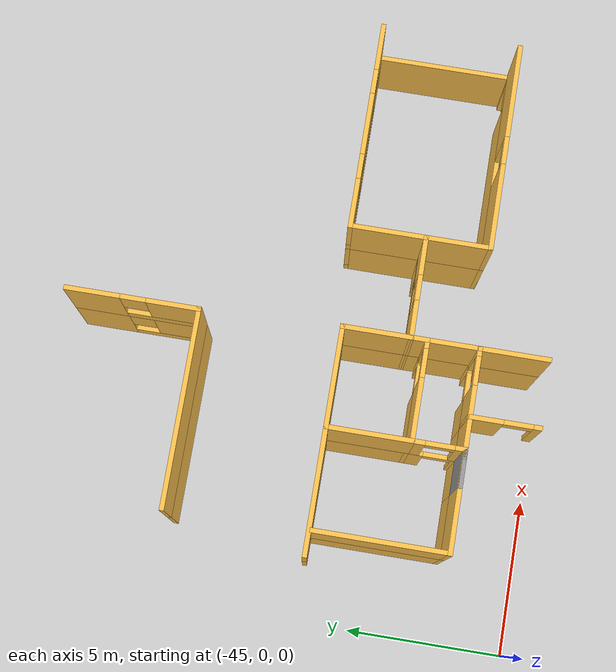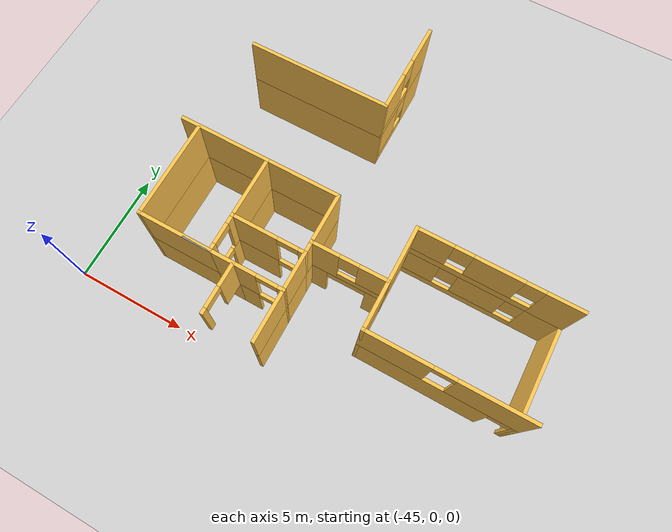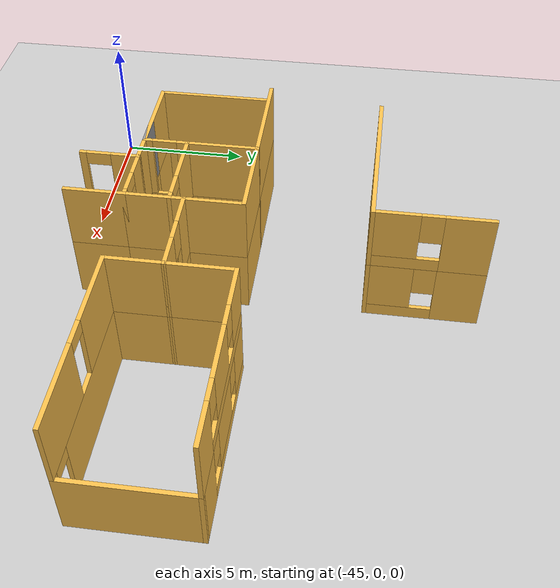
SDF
<sdf version="1.7">
 <world name="default">
  <model name="ground_plane">
   <static>1</static>
   <link name="link">
    <collision name="collision">
     <geometry><plane><normal>0 0 1</normal><size>100 100</size></plane></geometry>
     <surface>
      <contact><collide_bitmask>65535</collide_bitmask></contact>
      <friction><ode><mu>100</mu><mu2>50</mu2></ode></friction>
     </surface>
    </collision>
    <visual name="visual">
     <cast_shadows>0</cast_shadows>
     <geometry><plane><normal>0 0 1</normal><size>100 100</size></plane></geometry>
     <material>
      <script><uri>file://media/materials/scripts/gazebo.material</uri><name>Gazebo/Grey</name></script>
     </material>
    </visual>
   </link>
  </model>
  <model name="DepartmentBuilding">
   <pose>-25.6559 18.8293 0 0 -0 0</pose>
   <link name="Wall_106">
    <collision name="Wall_106_Collision">
     <geometry><box><size>4 0.15 2.5</size></box></geometry>
     <pose>0 0 1.25 0 -0 0</pose>
    </collision>
    <visual name="Wall_106_Visual">
     <pose>0 0 1.25 0 -0 0</pose>
     <geometry><box><size>4 0.15 2.5</size></box></geometry>
     <material>
      <script><uri>file://media/materials/scripts/gazebo.material</uri><name>Gazebo/Grey</name></script>
      <ambient>1 0.764706 0.305882 1</ambient>
     </material>
     <meta><layer>0</layer></meta>
    </visual>
    <pose>-15.5155 -12.1392 0 0 -0 0</pose>
   </link>
   <link name="Wall_108">
    <collision name="Wall_108_Collision">
     <geometry><box><size>2.75 0.15 2.5</size></box></geometry>
     <pose>0 0 1.25 0 -0 0</pose>
    </collision>
    <visual name="Wall_108_Visual">
     <pose>0 0 1.25 0 -0 0</pose>
     <geometry><box><size>2.75 0.15 2.5</size></box></geometry>
     <material>
      <script><uri>file://media/materials/scripts/gazebo.material</uri><name>Gazebo/Grey</name></script>
      <ambient>1 0.764706 0.305882 1</ambient>
     </material>
     <meta><layer>0</layer></meta>
    </visual>
    <pose>-13.5905 -13.4392 0 0 -0 -1.5708</pose>
   </link>
   <link name="Wall_109">
    <pose>-12.0405 -14.7392 0 0 -0 0</pose>
    <visual name="Wall_109_Visual_0">
     <pose>-0.642327 0 1.25 0 -0 0</pose>
     <geometry><box><size>1.96535 0.15 2.5</size></box></geometry>
     <material>
      <script><uri>file://media/materials/scripts/gazebo.material</uri><name>Gazebo/Grey</name></script>
      <ambient>1 0.764706 0.305882 1</ambient>
     </material>
     <meta><layer>0</layer></meta>
    </visual>
    <collision name="Wall_109_Collision_0">
     <geometry><box><size>1.96535 0.15 2.5</size></box></geometry>
     <pose>-0.642327 0 1.25 0 -0 0</pose>
    </collision>
    <visual name="Wall_109_Visual_1">
     <pose>1.43267 0 1.25 0 -0 0</pose>
     <geometry><box><size>0.384654 0.15 2.5</size></box></geometry>
     <material>
      <script><uri>file://media/materials/scripts/gazebo.material</uri><name>Gazebo/Grey</name></script>
      <ambient>1 0.764706 0.305882 1</ambient>
     </material>
     <meta><layer>0</layer></meta>
    </visual>
    <collision name="Wall_109_Collision_1">
     <geometry><box><size>0.384654 0.15 2.5</size></box></geometry>
     <pose>1.43267 0 1.25 0 -0 0</pose>
    </collision>
    <visual name="Wall_109_Visual_2">
     <pose>0.790346 0 2.25 0 -0 0</pose>
     <geometry><box><size>0.9 0.15 0.5</size></box></geometry>
     <material>
      <script><uri>file://media/materials/scripts/gazebo.material</uri><name>Gazebo/Grey</name></script>
      <ambient>1 0.764706 0.305882 1</ambient>
     </material>
     <meta><layer>0</layer></meta>
    </visual>
    <collision name="Wall_109_Collision_2">
     <geometry><box><size>0.9 0.15 0.5</size></box></geometry>
     <pose>0.790346 0 2.25 0 -0 0</pose>
    </collision>
   </link>
   <link name="Wall_111">
    <collision name="Wall_111_Collision">
     <geometry><box><size>3.25 0.15 2.5</size></box></geometry>
     <pose>0 0 1.25 0 -0 0</pose>
    </collision>
    <visual name="Wall_111_Visual">
     <pose>0 0 1.25 0 -0 0</pose>
     <geometry><box><size>3.25 0.15 2.5</size></box></geometry>
     <material>
      <script><uri>file://media/materials/scripts/gazebo.material</uri><name>Gazebo/Grey</name></script>
      <ambient>1 0.764706 0.305882 1</ambient>
     </material>
     <meta><layer>0</layer></meta>
    </visual>
    <pose>-12.0405 -12.1392 0 0 -0 -3.14159</pose>
   </link>
   <link name="Wall_113">
    <pose>-13.5905 -15.5392 0 0 -0 -1.5708</pose>
    <visual name="Wall_113_Visual_0">
     <pose>-0.577463 0 1.25 0 -0 0</pose>
     <geometry><box><size>0.595074 0.15 2.5</size></box></geometry>
     <material>
      <script><uri>file://media/materials/scripts/gazebo.material</uri><name>Gazebo/Grey</name></script>
      <ambient>1 0.764706 0.305882 1</ambient>
     </material>
     <meta><layer>0</layer></meta>
    </visual>
    <collision name="Wall_113_Collision_0">
     <geometry><box><size>0.595074 0.15 2.5</size></box></geometry>
     <pose>-0.577463 0 1.25 0 -0 0</pose>
    </collision>
    <visual name="Wall_113_Visual_1">
     <pose>0.747537 0 1.25 0 -0 0</pose>
     <geometry><box><size>0.254926 0.15 2.5</size></box></geometry>
     <material>
      <script><uri>file://media/materials/scripts/gazebo.material</uri><name>Gazebo/Grey</name></script>
      <ambient>1 0.764706 0.305882 1</ambient>
     </material>
     <meta><layer>0</layer></meta>
    </visual>
    <collision name="Wall_113_Collision_1">
     <geometry><box><size>0.254926 0.15 2.5</size></box></geometry>
     <pose>0.747537 0 1.25 0 -0 0</pose>
    </collision>
    <visual name="Wall_113_Visual_2">
     <pose>0.170074 0 2.25 0 -0 0</pose>
     <geometry><box><size>0.9 0.15 0.5</size></box></geometry>
     <material>
      <script><uri>file://media/materials/scripts/gazebo.material</uri><name>Gazebo/Grey</name></script>
      <ambient>1 0.764706 0.305882 1</ambient>
     </material>
     <meta><layer>0</layer></meta>
    </visual>
    <collision name="Wall_113_Collision_2">
     <geometry><box><size>0.9 0.15 0.5</size></box></geometry>
     <pose>0.170074 0 2.25 0 -0 0</pose>
    </collision>
   </link>
   <link name="Wall_114">
    <collision name="Wall_114_Collision">
     <geometry><box><size>3.25 0.15 2.5</size></box></geometry>
     <pose>0 0 1.25 0 -0 0</pose>
    </collision>
    <visual name="Wall_114_Visual">
     <pose>0 0 1.25 0 -0 0</pose>
     <geometry><box><size>3.25 0.15 2.5</size></box></geometry>
     <material>
      <script><uri>file://media/materials/scripts/gazebo.material</uri><name>Gazebo/Grey</name></script>
      <ambient>1 0.764706 0.305882 1</ambient>
     </material>
     <meta><layer>0</layer></meta>
    </visual>
    <pose>-15.1405 -16.3392 0 0 -0 3.14159</pose>
   </link>
   <link name="Wall_115">
    <collision name="Wall_115_Collision">
     <geometry><box><size>4.25 0.15 2.5</size></box></geometry>
     <pose>0 0 1.25 0 -0 0</pose>
    </collision>
    <visual name="Wall_115_Visual">
     <pose>0 0 1.25 0 -0 0</pose>
     <geometry><box><size>4.25 0.15 2.5</size></box></geometry>
     <material>
      <script><uri>file://media/materials/scripts/gazebo.material</uri><name>Gazebo/Grey</name></script>
      <ambient>1 0.764706 0.305882 1</ambient>
     </material>
     <meta><layer>0</layer></meta>
    </visual>
    <pose>-16.6905 -14.2892 0 0 -0 1.5708</pose>
   </link>
   <link name="Wall_117">
    <collision name="Wall_117_Collision">
     <geometry><box><size>1.25 0.15 2.5</size></box></geometry>
     <pose>0 0 1.25 0 -0 0</pose>
    </collision>
    <visual name="Wall_117_Visual">
     <pose>0 0 1.25 0 -0 0</pose>
     <geometry><box><size>1.25 0.15 2.5</size></box></geometry>
     <material>
      <script><uri>file://media/materials/scripts/gazebo.material</uri><name>Gazebo/Grey</name></script>
      <ambient>1 0.764706 0.305882 1</ambient>
     </material>
     <meta><layer>0</layer></meta>
    </visual>
    <pose>-14.1405 -16.3392 0 0 -0 3.14159</pose>
   </link>
   <link name="Wall_123">
    <collision name="Wall_123_Collision">
     <geometry><box><size>1.15 0.15 2.5</size></box></geometry>
     <pose>0 0 1.25 0 -0 0</pose>
    </collision>
    <visual name="Wall_123_Visual">
     <pose>0 0 1.25 0 -0 0</pose>
     <geometry><box><size>1.15 0.15 2.5</size></box></geometry>
     <material>
      <script><uri>file://media/materials/scripts/gazebo.material</uri><name>Gazebo/Grey</name></script>
      <ambient>1 0.764706 0.305882 1</ambient>
     </material>
     <meta><layer>0</layer></meta>
    </visual>
    <pose>-13.0905 -16.3392 0 0 -0 3.14159</pose>
   </link>
   <link name="Wall_125">
    <pose>-11.5405 -16.3392 0 0 -0 0</pose>
    <visual name="Wall_125_Visual_0">
     <pose>-0.634572 0 1.25 0 -0 0</pose>
     <geometry><box><size>0.980857 0.15 2.5</size></box></geometry>
     <material>
      <script><uri>file://media/materials/scripts/gazebo.material</uri><name>Gazebo/Grey</name></script>
      <ambient>1 0.764706 0.305882 1</ambient>
     </material>
     <meta><layer>0</layer></meta>
    </visual>
    <collision name="Wall_125_Collision_0">
     <geometry><box><size>0.980857 0.15 2.5</size></box></geometry>
     <pose>-0.634572 0 1.25 0 -0 0</pose>
    </collision>
    <visual name="Wall_125_Visual_1">
     <pose>0.940428 0 1.25 0 -0 0</pose>
     <geometry><box><size>0.369143 0.15 2.5</size></box></geometry>
     <material>
      <script><uri>file://media/materials/scripts/gazebo.material</uri><name>Gazebo/Grey</name></script>
      <ambient>1 0.764706 0.305882 1</ambient>
     </material>
     <meta><layer>0</layer></meta>
    </visual>
    <collision name="Wall_125_Collision_1">
     <geometry><box><size>0.369143 0.15 2.5</size></box></geometry>
     <pose>0.940428 0 1.25 0 -0 0</pose>
    </collision>
    <visual name="Wall_125_Visual_2">
     <pose>0.305857 0 2.25 0 -0 0</pose>
     <geometry><box><size>0.9 0.15 0.5</size></box></geometry>
     <material>
      <script><uri>file://media/materials/scripts/gazebo.material</uri><name>Gazebo/Grey</name></script>
      <ambient>1 0.764706 0.305882 1</ambient>
     </material>
     <meta><layer>0</layer></meta>
    </visual>
    <collision name="Wall_125_Collision_2">
     <geometry><box><size>0.9 0.15 0.5</size></box></geometry>
     <pose>0.305857 0 2.25 0 -0 0</pose>
    </collision>
   </link>
   <link name="Wall_126">
    <collision name="Wall_126_Collision">
     <geometry><box><size>1.75 0.15 2.5</size></box></geometry>
     <pose>0 0 1.25 0 -0 0</pose>
    </collision>
    <visual name="Wall_126_Visual">
     <pose>0 0 1.25 0 -0 0</pose>
     <geometry><box><size>1.75 0.15 2.5</size></box></geometry>
     <material>
      <script><uri>file://media/materials/scripts/gazebo.material</uri><name>Gazebo/Grey</name></script>
      <ambient>1 0.764706 0.305882 1</ambient>
     </material>
     <meta><layer>0</layer></meta>
    </visual>
    <pose>-10.4905 -15.5392 0 0 -0 1.5708</pose>
   </link>
   <link name="Wall_128">
    <collision name="Wall_128_Collision">
     <geometry><box><size>2.25 0.15 2.5</size></box></geometry>
     <pose>0 0 1.25 0 -0 0</pose>
    </collision>
    <visual name="Wall_128_Visual">
     <pose>0 0 1.25 0 -0 0</pose>
     <geometry><box><size>2.25 0.15 2.5</size></box></geometry>
     <material>
      <script><uri>file://media/materials/scripts/gazebo.material</uri><name>Gazebo/Grey</name></script>
      <ambient>1 0.764706 0.305882 1</ambient>
     </material>
     <meta><layer>0</layer></meta>
    </visual>
    <pose>-10.4905 -17.3892 0 0 -0 -1.5708</pose>
   </link>
   <link name="Wall_135">
    <pose>-4.03059 -16.2196 0 0 -0 0</pose>
    <visual name="Wall_135_Visual_0">
     <pose>-0.589693 0 1.25 0 -0 0</pose>
     <geometry><box><size>5.57062 0.15 2.5</size></box></geometry>
     <material>
      <script><uri>file://media/materials/scripts/gazebo.material</uri><name>Gazebo/Grey</name></script>
      <ambient>1 0.764706 0.305882 1</ambient>
     </material>
     <meta><layer>0</layer></meta>
    </visual>
    <collision name="Wall_135_Collision_0">
     <geometry><box><size>5.57062 0.15 2.5</size></box></geometry>
     <pose>-0.589693 0 1.25 0 -0 0</pose>
    </collision>
    <visual name="Wall_135_Visual_1">
     <pose>3.23531 0 1.25 0 -0 0</pose>
     <geometry><box><size>0.279385 0.15 2.5</size></box></geometry>
     <material>
      <script><uri>file://media/materials/scripts/gazebo.material</uri><name>Gazebo/Grey</name></script>
      <ambient>1 0.764706 0.305882 1</ambient>
     </material>
     <meta><layer>0</layer></meta>
    </visual>
    <collision name="Wall_135_Collision_1">
     <geometry><box><size>0.279385 0.15 2.5</size></box></geometry>
     <pose>3.23531 0 1.25 0 -0 0</pose>
    </collision>
    <visual name="Wall_135_Visual_2">
     <pose>2.64561 0 2.25 0 -0 0</pose>
     <geometry><box><size>0.9 0.15 0.5</size></box></geometry>
     <material>
      <script><uri>file://media/materials/scripts/gazebo.material</uri><name>Gazebo/Grey</name></script>
      <ambient>1 0.764706 0.305882 1</ambient>
     </material>
     <meta><layer>0</layer></meta>
    </visual>
    <collision name="Wall_135_Collision_2">
     <geometry><box><size>0.9 0.15 0.5</size></box></geometry>
     <pose>2.64561 0 2.25 0 -0 0</pose>
    </collision>
   </link>
   <link name="Wall_136">
    <collision name="Wall_136_Collision">
     <geometry><box><size>4.5 0.15 2.5</size></box></geometry>
     <pose>0 0 1.25 0 -0 0</pose>
    </collision>
    <visual name="Wall_136_Visual">
     <pose>0 0 1.25 0 -0 0</pose>
     <geometry><box><size>4.5 0.15 2.5</size></box></geometry>
     <material>
      <script><uri>file://media/materials/scripts/gazebo.material</uri><name>Gazebo/Grey</name></script>
      <ambient>1 0.764706 0.305882 1</ambient>
     </material>
     <meta><layer>0</layer></meta>
    </visual>
    <pose>-0.730591 -14.0446 0 0 -0 1.5708</pose>
   </link>
   <link name="Wall_137">
    <pose>-4.03059 -11.8696 0 0 -0 3.14159</pose>
    <visual name="Wall_137_Visual_0">
     <pose>-2.59254 0 1.25 0 -0 0</pose>
     <geometry><box><size>1.56491 0.15 2.5</size></box></geometry>
     <material>
      <script><uri>file://media/materials/scripts/gazebo.material</uri><name>Gazebo/Grey</name></script>
      <ambient>1 0.764706 0.305882 1</ambient>
     </material>
     <meta><layer>0</layer></meta>
    </visual>
    <collision name="Wall_137_Collision_0">
     <geometry><box><size>1.56491 0.15 2.5</size></box></geometry>
     <pose>-2.59254 0 1.25 0 -0 0</pose>
    </collision>
    <visual name="Wall_137_Visual_1">
     <pose>0.782456 0 0.25 0 -0 0</pose>
     <geometry><box><size>5.18509 0.15 0.5</size></box></geometry>
     <material>
      <script><uri>file://media/materials/scripts/gazebo.material</uri><name>Gazebo/Grey</name></script>
      <ambient>1 0.764706 0.305882 1</ambient>
     </material>
     <meta><layer>0</layer></meta>
    </visual>
    <collision name="Wall_137_Collision_1">
     <geometry><box><size>5.18509 0.15 0.5</size></box></geometry>
     <pose>0.782456 0 0.25 0 -0 0</pose>
    </collision>
    <visual name="Wall_137_Visual_2">
     <pose>0.012338 0 1.5 0 -0 0</pose>
     <geometry><box><size>2.04485 0.15 2</size></box></geometry>
     <material>
      <script><uri>file://media/materials/scripts/gazebo.material</uri><name>Gazebo/Grey</name></script>
      <ambient>1 0.764706 0.305882 1</ambient>
     </material>
     <meta><layer>0</layer></meta>
    </visual>
    <collision name="Wall_137_Collision_2">
     <geometry><box><size>2.04485 0.15 2</size></box></geometry>
     <pose>0.012338 0 1.5 0 -0 0</pose>
    </collision>
    <visual name="Wall_137_Visual_3">
     <pose>2.60488 0 1.5 0 -0 0</pose>
     <geometry><box><size>1.54024 0.15 2</size></box></geometry>
     <material>
      <script><uri>file://media/materials/scripts/gazebo.material</uri><name>Gazebo/Grey</name></script>
      <ambient>1 0.764706 0.305882 1</ambient>
     </material>
     <meta><layer>0</layer></meta>
    </visual>
    <collision name="Wall_137_Collision_3">
     <geometry><box><size>1.54024 0.15 2</size></box></geometry>
     <pose>2.60488 0 1.5 0 -0 0</pose>
    </collision>
    <visual name="Wall_137_Visual_4">
     <pose>-1.41009 0 1.9 0 -0 0</pose>
     <geometry><box><size>0.8 0.15 1.2</size></box></geometry>
     <material>
      <script><uri>file://media/materials/scripts/gazebo.material</uri><name>Gazebo/Grey</name></script>
      <ambient>1 0.764706 0.305882 1</ambient>
     </material>
     <meta><layer>0</layer></meta>
    </visual>
    <collision name="Wall_137_Collision_4">
     <geometry><box><size>0.8 0.15 1.2</size></box></geometry>
     <pose>-1.41009 0 1.9 0 -0 0</pose>
    </collision>
    <visual name="Wall_137_Visual_5">
     <pose>1.43476 0 1.9 0 -0 0</pose>
     <geometry><box><size>0.8 0.15 1.2</size></box></geometry>
     <material>
      <script><uri>file://media/materials/scripts/gazebo.material</uri><name>Gazebo/Grey</name></script>
      <ambient>1 0.764706 0.305882 1</ambient>
     </material>
     <meta><layer>0</layer></meta>
    </visual>
    <collision name="Wall_137_Collision_5">
     <geometry><box><size>0.8 0.15 1.2</size></box></geometry>
     <pose>1.43476 0 1.9 0 -0 0</pose>
    </collision>
   </link>
   <link name="Wall_146">
    <collision name="Wall_146_Collision">
     <geometry><box><size>2.5 0.15 2.5</size></box></geometry>
     <pose>0 0 1.25 0 -0 0</pose>
    </collision>
    <visual name="Wall_146_Visual">
     <pose>0 0 1.25 0 -0 0</pose>
     <geometry><box><size>2.5 0.15 2.5</size></box></geometry>
     <material>
      <script><uri>file://media/materials/scripts/gazebo.material</uri><name>Gazebo/Grey</name></script>
      <ambient>1 0.764706 0.305882 1</ambient>
     </material>
     <meta><layer>0</layer></meta>
    </visual>
    <pose>-7.33059 -13.0446 0 0 -0 -1.5708</pose>
   </link>
   <link name="Wall_147">
    <collision name="Wall_147_Collision">
     <geometry><box><size>2.15 0.15 2.5</size></box></geometry>
     <pose>0 0 1.25 0 -0 0</pose>
    </collision>
    <visual name="Wall_147_Visual">
     <pose>0 0 1.25 0 -0 0</pose>
     <geometry><box><size>2.15 0.15 2.5</size></box></geometry>
     <material>
      <script><uri>file://media/materials/scripts/gazebo.material</uri><name>Gazebo/Grey</name></script>
      <ambient>1 0.764706 0.305882 1</ambient>
     </material>
     <meta><layer>0</layer></meta>
    </visual>
    <pose>-7.33059 -15.2196 0 0 -0 -1.5708</pose>
   </link>
   <link name="Wall_152">
    <collision name="Wall_152_Collision">
     <geometry><box><size>2.25 0.15 2.5</size></box></geometry>
     <pose>0 0 1.25 0 -0 0</pose>
    </collision>
    <visual name="Wall_152_Visual">
     <pose>0 0 1.25 0 -0 0</pose>
     <geometry><box><size>2.25 0.15 2.5</size></box></geometry>
     <material>
      <script><uri>file://media/materials/scripts/gazebo.material</uri><name>Gazebo/Grey</name></script>
      <ambient>1 0.764706 0.305882 1</ambient>
     </material>
     <meta><layer>0</layer></meta>
    </visual>
    <pose>-10.4905 -13.1892 0 0 -0 -1.5708</pose>
   </link>
   <link name="Wall_153">
    <collision name="Wall_153_Collision">
     <geometry><box><size>0.65 0.15 2.5</size></box></geometry>
     <pose>0 0 1.25 0 -0 0</pose>
    </collision>
    <visual name="Wall_153_Visual">
     <pose>0 0 1.25 0 -0 0</pose>
     <geometry><box><size>0.65 0.15 2.5</size></box></geometry>
     <material>
      <script><uri>file://media/materials/scripts/gazebo.material</uri><name>Gazebo/Grey</name></script>
      <ambient>1 0.764706 0.305882 1</ambient>
     </material>
     <meta><layer>0</layer></meta>
    </visual>
    <pose>-10.4905 -14.4892 0 0 -0 -1.5708</pose>
   </link>
   <link name="Wall_155">
    <pose>-8.91057 -14.2294 0 0 -0 0.006196</pose>
    <visual name="Wall_155_Visual_0">
     <pose>-1.2388 0 1.25 0 -0 0</pose>
     <geometry><box><size>0.832406 0.15 2.5</size></box></geometry>
     <material>
      <script><uri>file://media/materials/scripts/gazebo.material</uri><name>Gazebo/Grey</name></script>
      <ambient>1 0.764706 0.305882 1</ambient>
     </material>
     <meta><layer>0</layer></meta>
    </visual>
    <collision name="Wall_155_Collision_0">
     <geometry><box><size>0.832406 0.15 2.5</size></box></geometry>
     <pose>-1.2388 0 1.25 0 -0 0</pose>
    </collision>
    <visual name="Wall_155_Visual_1">
     <pose>1.2662 0 1.25 0 -0 0</pose>
     <geometry><box><size>0.777605 0.15 2.5</size></box></geometry>
     <material>
      <script><uri>file://media/materials/scripts/gazebo.material</uri><name>Gazebo/Grey</name></script>
      <ambient>1 0.764706 0.305882 1</ambient>
     </material>
     <meta><layer>0</layer></meta>
    </visual>
    <collision name="Wall_155_Collision_1">
     <geometry><box><size>0.777605 0.15 2.5</size></box></geometry>
     <pose>1.2662 0 1.25 0 -0 0</pose>
    </collision>
    <visual name="Wall_155_Visual_2">
     <pose>0.027401 0 2.25 0 -0 0</pose>
     <geometry><box><size>1.7 0.15 0.5</size></box></geometry>
     <material>
      <script><uri>file://media/materials/scripts/gazebo.material</uri><name>Gazebo/Grey</name></script>
      <ambient>1 0.764706 0.305882 1</ambient>
     </material>
     <meta><layer>0</layer></meta>
    </visual>
    <collision name="Wall_155_Collision_2">
     <geometry><box><size>1.7 0.15 0.5</size></box></geometry>
     <pose>0.027401 0 2.25 0 -0 0</pose>
    </collision>
   </link>
   <link name="Wall_351">
    <collision name="Wall_351_Collision">
     <geometry><box><size>6.25 0.15 2.5</size></box></geometry>
     <pose>0 0 1.25 0 -0 0</pose>
    </collision>
    <visual name="Wall_351_Visual">
     <pose>0 0 1.25 0 -0 0</pose>
     <geometry><box><size>6.25 0.15 2.5</size></box></geometry>
     <material>
      <script><uri>file://media/materials/scripts/gazebo.material</uri><name>Gazebo/Grey</name></script>
      <ambient>1 0.764706 0.305882 1</ambient>
     </material>
     <meta><layer>0</layer></meta>
    </visual>
    <pose>-13.7306 -7.76094 0 0 -0 0</pose>
   </link>
   <link name="Wall_353">
    <pose>-10.6806 -5.71094 0 0 -0 -1.5708</pose>
    <visual name="Wall_353_Visual_0">
     <pose>-1.24935 0 1.25 0 -0 0</pose>
     <geometry><box><size>1.75131 0.15 2.5</size></box></geometry>
     <material>
      <script><uri>file://media/materials/scripts/gazebo.material</uri><name>Gazebo/Grey</name></script>
      <ambient>1 0.764706 0.305882 1</ambient>
     </material>
     <meta><layer>0</layer></meta>
    </visual>
    <collision name="Wall_353_Collision_0">
     <geometry><box><size>1.75131 0.15 2.5</size></box></geometry>
     <pose>-1.24935 0 1.25 0 -0 0</pose>
    </collision>
    <visual name="Wall_353_Visual_1">
     <pose>0.875654 0 0.25 0 -0 0</pose>
     <geometry><box><size>2.49869 0.15 0.5</size></box></geometry>
     <material>
      <script><uri>file://media/materials/scripts/gazebo.material</uri><name>Gazebo/Grey</name></script>
      <ambient>1 0.764706 0.305882 1</ambient>
     </material>
     <meta><layer>0</layer></meta>
    </visual>
    <collision name="Wall_353_Collision_1">
     <geometry><box><size>2.49869 0.15 0.5</size></box></geometry>
     <pose>0.875654 0 0.25 0 -0 0</pose>
    </collision>
    <visual name="Wall_353_Visual_2">
     <pose>1.27565 0 1.5 0 -0 0</pose>
     <geometry><box><size>1.69869 0.15 2</size></box></geometry>
     <material>
      <script><uri>file://media/materials/scripts/gazebo.material</uri><name>Gazebo/Grey</name></script>
      <ambient>1 0.764706 0.305882 1</ambient>
     </material>
     <meta><layer>0</layer></meta>
    </visual>
    <collision name="Wall_353_Collision_2">
     <geometry><box><size>1.69869 0.15 2</size></box></geometry>
     <pose>1.27565 0 1.5 0 -0 0</pose>
    </collision>
    <visual name="Wall_353_Visual_3">
     <pose>0.026307 0 1.9 0 -0 0</pose>
     <geometry><box><size>0.8 0.15 1.2</size></box></geometry>
     <material>
      <script><uri>file://media/materials/scripts/gazebo.material</uri><name>Gazebo/Grey</name></script>
      <ambient>1 0.764706 0.305882 1</ambient>
     </material>
     <meta><layer>0</layer></meta>
    </visual>
    <collision name="Wall_353_Collision_3">
     <geometry><box><size>0.8 0.15 1.2</size></box></geometry>
     <pose>0.026307 0 1.9 0 -0 0</pose>
    </collision>
   </link>
   <link name="Wall_829">
    <collision name="Wall_829_Collision">
     <geometry><box><size>4 0.15 2.5</size></box></geometry>
     <pose>0 0 1.25 0 -0 0</pose>
    </collision>
    <visual name="Wall_829_Visual">
     <pose>0 0 1.25 0 -0 0</pose>
     <geometry><box><size>4 0.15 2.5</size></box></geometry>
     <material>
      <script><uri>file://media/materials/scripts/gazebo.material</uri><name>Gazebo/Grey</name></script>
      <ambient>1 0.764706 0.305882 1</ambient>
     </material>
     <meta><layer>1</layer></meta>
    </visual>
    <pose>-15.5155 -12.1392 2.5 0 -0 0</pose>
   </link>
   <link name="Wall_830">
    <collision name="Wall_830_Collision">
     <geometry><box><size>2.75 0.15 2.5</size></box></geometry>
     <pose>0 0 1.25 0 -0 0</pose>
    </collision>
    <visual name="Wall_830_Visual">
     <pose>0 0 1.25 0 -0 0</pose>
     <geometry><box><size>2.75 0.15 2.5</size></box></geometry>
     <material>
      <script><uri>file://media/materials/scripts/gazebo.material</uri><name>Gazebo/Grey</name></script>
      <ambient>1 0.764706 0.305882 1</ambient>
     </material>
     <meta><layer>1</layer></meta>
    </visual>
    <pose>-13.5905 -13.4392 2.5 0 -0 -1.5708</pose>
   </link>
   <link name="Wall_831">
    <pose>-12.0405 -14.7392 2.5 0 -0 0</pose>
    <visual name="Wall_831_Visual_0">
     <pose>-0.619083 0 1.25 0 -0 0</pose>
     <geometry><box><size>2.01183 0.15 2.5</size></box></geometry>
     <material>
      <script><uri>file://media/materials/scripts/gazebo.material</uri><name>Gazebo/Grey</name></script>
      <ambient>1 0.764706 0.305882 1</ambient>
     </material>
     <meta><layer>1</layer></meta>
    </visual>
    <collision name="Wall_831_Collision_0">
     <geometry><box><size>2.01183 0.15 2.5</size></box></geometry>
     <pose>-0.619083 0 1.25 0 -0 0</pose>
    </collision>
    <visual name="Wall_831_Visual_1">
     <pose>1.45592 0 1.25 0 -0 0</pose>
     <geometry><box><size>0.338167 0.15 2.5</size></box></geometry>
     <material>
      <script><uri>file://media/materials/scripts/gazebo.material</uri><name>Gazebo/Grey</name></script>
      <ambient>1 0.764706 0.305882 1</ambient>
     </material>
     <meta><layer>1</layer></meta>
    </visual>
    <collision name="Wall_831_Collision_1">
     <geometry><box><size>0.338167 0.15 2.5</size></box></geometry>
     <pose>1.45592 0 1.25 0 -0 0</pose>
    </collision>
    <visual name="Wall_831_Visual_2">
     <pose>0.836833 0 2.25 0 -0 0</pose>
     <geometry><box><size>0.9 0.15 0.5</size></box></geometry>
     <material>
      <script><uri>file://media/materials/scripts/gazebo.material</uri><name>Gazebo/Grey</name></script>
      <ambient>1 0.764706 0.305882 1</ambient>
     </material>
     <meta><layer>1</layer></meta>
    </visual>
    <collision name="Wall_831_Collision_2">
     <geometry><box><size>0.9 0.15 0.5</size></box></geometry>
     <pose>0.836833 0 2.25 0 -0 0</pose>
    </collision>
   </link>
   <link name="Wall_832">
    <collision name="Wall_832_Collision">
     <geometry><box><size>3.25 0.15 2.5</size></box></geometry>
     <pose>0 0 1.25 0 -0 0</pose>
    </collision>
    <visual name="Wall_832_Visual">
     <pose>0 0 1.25 0 -0 0</pose>
     <geometry><box><size>3.25 0.15 2.5</size></box></geometry>
     <material>
      <script><uri>file://media/materials/scripts/gazebo.material</uri><name>Gazebo/Grey</name></script>
      <ambient>1 0.764706 0.305882 1</ambient>
     </material>
     <meta><layer>1</layer></meta>
    </visual>
    <pose>-12.0405 -12.1392 2.5 0 -0 -3.14159</pose>
   </link>
   <link name="Wall_833">
    <pose>-13.5905 -15.5392 2.5 0 -0 -1.5708</pose>
    <visual name="Wall_833_Visual_0">
     <pose>-0.641517 0 1.25 0 -0 0</pose>
     <geometry><box><size>0.466965 0.15 2.5</size></box></geometry>
     <material>
      <script><uri>file://media/materials/scripts/gazebo.material</uri><name>Gazebo/Grey</name></script>
      <ambient>1 0.764706 0.305882 1</ambient>
     </material>
     <meta><layer>1</layer></meta>
    </visual>
    <collision name="Wall_833_Collision_0">
     <geometry><box><size>0.466965 0.15 2.5</size></box></geometry>
     <pose>-0.641517 0 1.25 0 -0 0</pose>
    </collision>
    <visual name="Wall_833_Visual_1">
     <pose>0.683483 0 1.25 0 -0 0</pose>
     <geometry><box><size>0.383035 0.15 2.5</size></box></geometry>
     <material>
      <script><uri>file://media/materials/scripts/gazebo.material</uri><name>Gazebo/Grey</name></script>
      <ambient>1 0.764706 0.305882 1</ambient>
     </material>
     <meta><layer>1</layer></meta>
    </visual>
    <collision name="Wall_833_Collision_1">
     <geometry><box><size>0.383035 0.15 2.5</size></box></geometry>
     <pose>0.683483 0 1.25 0 -0 0</pose>
    </collision>
    <visual name="Wall_833_Visual_2">
     <pose>0.041965 0 2.25 0 -0 0</pose>
     <geometry><box><size>0.9 0.15 0.5</size></box></geometry>
     <material>
      <script><uri>file://media/materials/scripts/gazebo.material</uri><name>Gazebo/Grey</name></script>
      <ambient>1 0.764706 0.305882 1</ambient>
     </material>
     <meta><layer>1</layer></meta>
    </visual>
    <collision name="Wall_833_Collision_2">
     <geometry><box><size>0.9 0.15 0.5</size></box></geometry>
     <pose>0.041965 0 2.25 0 -0 0</pose>
    </collision>
   </link>
   <link name="Wall_834">
    <collision name="Wall_834_Collision">
     <geometry><box><size>3.25 0.15 2.5</size></box></geometry>
     <pose>0 0 1.25 0 -0 0</pose>
    </collision>
    <visual name="Wall_834_Visual">
     <pose>0 0 1.25 0 -0 0</pose>
     <geometry><box><size>3.25 0.15 2.5</size></box></geometry>
     <material>
      <script><uri>file://media/materials/scripts/gazebo.material</uri><name>Gazebo/Grey</name></script>
      <ambient>1 0.764706 0.305882 1</ambient>
     </material>
     <meta><layer>1</layer></meta>
    </visual>
    <pose>-15.1405 -16.3392 2.5 0 -0 3.14159</pose>
   </link>
   <link name="Wall_835">
    <collision name="Wall_835_Collision">
     <geometry><box><size>4.25 0.15 2.5</size></box></geometry>
     <pose>0 0 1.25 0 -0 0</pose>
    </collision>
    <visual name="Wall_835_Visual">
     <pose>0 0 1.25 0 -0 0</pose>
     <geometry><box><size>4.25 0.15 2.5</size></box></geometry>
     <material>
      <script><uri>file://media/materials/scripts/gazebo.material</uri><name>Gazebo/Grey</name></script>
      <ambient>1 0.764706 0.305882 1</ambient>
     </material>
     <meta><layer>1</layer></meta>
    </visual>
    <pose>-16.6905 -14.2892 2.5 0 -0 1.5708</pose>
   </link>
   <link name="Wall_836">
    <collision name="Wall_836_Collision">
     <geometry><box><size>1.25 0.15 2.5</size></box></geometry>
     <pose>0 0 1.25 0 -0 0</pose>
    </collision>
    <visual name="Wall_836_Visual">
     <pose>0 0 1.25 0 -0 0</pose>
     <geometry><box><size>1.25 0.15 2.5</size></box></geometry>
     <material>
      <script><uri>file://media/materials/scripts/gazebo.material</uri><name>Gazebo/Grey</name></script>
      <ambient>1 1 1 1</ambient>
     </material>
     <meta><layer>1</layer></meta>
    </visual>
    <pose>-14.1405 -16.3392 2.5 0 -0 3.14159</pose>
   </link>
   <link name="Wall_840">
    <pose>-12.5905 -17.3892 2.5 0 -0 1.5708</pose>
    <visual name="Wall_840_Visual_0">
     <pose>-0.993025 0 1.25 0 -0 0</pose>
     <geometry><box><size>0.26395 0.15 2.5</size></box></geometry>
     <material>
      <script><uri>file://media/materials/scripts/gazebo.material</uri><name>Gazebo/Grey</name></script>
      <ambient>1 0.764706 0.305882 1</ambient>
     </material>
     <meta><layer>1</layer></meta>
    </visual>
    <collision name="Wall_840_Collision_0">
     <geometry><box><size>0.26395 0.15 2.5</size></box></geometry>
     <pose>-0.993025 0 1.25 0 -0 0</pose>
    </collision>
    <visual name="Wall_840_Visual_1">
     <pose>0.581975 0 1.25 0 -0 0</pose>
     <geometry><box><size>1.08605 0.15 2.5</size></box></geometry>
     <material>
      <script><uri>file://media/materials/scripts/gazebo.material</uri><name>Gazebo/Grey</name></script>
      <ambient>1 0.764706 0.305882 1</ambient>
     </material>
     <meta><layer>1</layer></meta>
    </visual>
    <collision name="Wall_840_Collision_1">
     <geometry><box><size>1.08605 0.15 2.5</size></box></geometry>
     <pose>0.581975 0 1.25 0 -0 0</pose>
    </collision>
    <visual name="Wall_840_Visual_2">
     <pose>-0.41105 0 2.25 0 -0 0</pose>
     <geometry><box><size>0.9 0.15 0.5</size></box></geometry>
     <material>
      <script><uri>file://media/materials/scripts/gazebo.material</uri><name>Gazebo/Grey</name></script>
      <ambient>1 0.764706 0.305882 1</ambient>
     </material>
     <meta><layer>1</layer></meta>
    </visual>
    <collision name="Wall_840_Collision_2">
     <geometry><box><size>0.9 0.15 0.5</size></box></geometry>
     <pose>-0.41105 0 2.25 0 -0 0</pose>
    </collision>
   </link>
   <link name="Wall_841">
    <collision name="Wall_841_Collision">
     <geometry><box><size>1.15 0.15 2.5</size></box></geometry>
     <pose>0 0 1.25 0 -0 0</pose>
    </collision>
    <visual name="Wall_841_Visual">
     <pose>0 0 1.25 0 -0 0</pose>
     <geometry><box><size>1.15 0.15 2.5</size></box></geometry>
     <material>
      <script><uri>file://media/materials/scripts/gazebo.material</uri><name>Gazebo/Grey</name></script>
      <ambient>1 0.764706 0.305882 1</ambient>
     </material>
     <meta><layer>1</layer></meta>
    </visual>
    <pose>-13.0905 -16.3392 2.5 0 -0 3.14159</pose>
   </link>
   <link name="Wall_842">
    <pose>-11.5405 -16.3392 2.5 0 -0 0</pose>
    <visual name="Wall_842_Visual_0">
     <pose>-0.603961 0 1.25 0 -0 0</pose>
     <geometry><box><size>1.04208 0.15 2.5</size></box></geometry>
     <material>
      <script><uri>file://media/materials/scripts/gazebo.material</uri><name>Gazebo/Grey</name></script>
      <ambient>1 0.764706 0.305882 1</ambient>
     </material>
     <meta><layer>1</layer></meta>
    </visual>
    <collision name="Wall_842_Collision_0">
     <geometry><box><size>1.04208 0.15 2.5</size></box></geometry>
     <pose>-0.603961 0 1.25 0 -0 0</pose>
    </collision>
    <visual name="Wall_842_Visual_1">
     <pose>0.971039 0 1.25 0 -0 0</pose>
     <geometry><box><size>0.307921 0.15 2.5</size></box></geometry>
     <material>
      <script><uri>file://media/materials/scripts/gazebo.material</uri><name>Gazebo/Grey</name></script>
      <ambient>1 0.764706 0.305882 1</ambient>
     </material>
     <meta><layer>1</layer></meta>
    </visual>
    <collision name="Wall_842_Collision_1">
     <geometry><box><size>0.307921 0.15 2.5</size></box></geometry>
     <pose>0.971039 0 1.25 0 -0 0</pose>
    </collision>
    <visual name="Wall_842_Visual_2">
     <pose>0.367079 0 2.25 0 -0 0</pose>
     <geometry><box><size>0.9 0.15 0.5</size></box></geometry>
     <material>
      <script><uri>file://media/materials/scripts/gazebo.material</uri><name>Gazebo/Grey</name></script>
      <ambient>1 0.764706 0.305882 1</ambient>
     </material>
     <meta><layer>1</layer></meta>
    </visual>
    <collision name="Wall_842_Collision_2">
     <geometry><box><size>0.9 0.15 0.5</size></box></geometry>
     <pose>0.367079 0 2.25 0 -0 0</pose>
    </collision>
   </link>
   <link name="Wall_843">
    <collision name="Wall_843_Collision">
     <geometry><box><size>1.75 0.15 2.5</size></box></geometry>
     <pose>0 0 1.25 0 -0 0</pose>
    </collision>
    <visual name="Wall_843_Visual">
     <pose>0 0 1.25 0 -0 0</pose>
     <geometry><box><size>1.75 0.15 2.5</size></box></geometry>
     <material>
      <script><uri>file://media/materials/scripts/gazebo.material</uri><name>Gazebo/Grey</name></script>
      <ambient>1 0.764706 0.305882 1</ambient>
     </material>
     <meta><layer>1</layer></meta>
    </visual>
    <pose>-10.4905 -15.5392 2.5 0 -0 1.5708</pose>
   </link>
   <link name="Wall_844">
    <collision name="Wall_844_Collision">
     <geometry><box><size>2.25 0.15 2.5</size></box></geometry>
     <pose>0 0 1.25 0 -0 0</pose>
    </collision>
    <visual name="Wall_844_Visual">
     <pose>0 0 1.25 0 -0 0</pose>
     <geometry><box><size>2.25 0.15 2.5</size></box></geometry>
     <material>
      <script><uri>file://media/materials/scripts/gazebo.material</uri><name>Gazebo/Grey</name></script>
      <ambient>1 0.764706 0.305882 1</ambient>
     </material>
     <meta><layer>1</layer></meta>
    </visual>
    <pose>-10.4905 -17.3892 2.5 0 -0 -1.5708</pose>
   </link>
   <link name="Wall_846">
    <pose>-4.03059 -16.2196 2.5 0 -0 0</pose>
    <visual name="Wall_846_Visual_0">
     <pose>-1.97538 0 1.25 0 -0 0</pose>
     <geometry><box><size>2.79925 0.15 2.5</size></box></geometry>
     <material>
      <script><uri>file://media/materials/scripts/gazebo.material</uri><name>Gazebo/Grey</name></script>
      <ambient>1 0.764706 0.305882 1</ambient>
     </material>
     <meta><layer>1</layer></meta>
    </visual>
    <collision name="Wall_846_Collision_0">
     <geometry><box><size>2.79925 0.15 2.5</size></box></geometry>
     <pose>-1.97538 0 1.25 0 -0 0</pose>
    </collision>
    <visual name="Wall_846_Visual_1">
     <pose>1.84962 0 1.25 0 -0 0</pose>
     <geometry><box><size>3.05075 0.15 2.5</size></box></geometry>
     <material>
      <script><uri>file://media/materials/scripts/gazebo.material</uri><name>Gazebo/Grey</name></script>
      <ambient>1 0.764706 0.305882 1</ambient>
     </material>
     <meta><layer>1</layer></meta>
    </visual>
    <collision name="Wall_846_Collision_1">
     <geometry><box><size>3.05075 0.15 2.5</size></box></geometry>
     <pose>1.84962 0 1.25 0 -0 0</pose>
    </collision>
    <visual name="Wall_846_Visual_2">
     <pose>-0.125754 0 2.25 0 -0 0</pose>
     <geometry><box><size>0.9 0.15 0.5</size></box></geometry>
     <material>
      <script><uri>file://media/materials/scripts/gazebo.material</uri><name>Gazebo/Grey</name></script>
      <ambient>1 0.764706 0.305882 1</ambient>
     </material>
     <meta><layer>1</layer></meta>
    </visual>
    <collision name="Wall_846_Collision_2">
     <geometry><box><size>0.9 0.15 0.5</size></box></geometry>
     <pose>-0.125754 0 2.25 0 -0 0</pose>
    </collision>
   </link>
   <link name="Wall_848">
    <pose>-4.03059 -11.8696 2.5 0 -0 3.14159</pose>
    <visual name="Wall_848_Visual_0">
     <pose>-2.60798 0 1.25 0 -0 0</pose>
     <geometry><box><size>1.53404 0.15 2.5</size></box></geometry>
     <material>
      <script><uri>file://media/materials/scripts/gazebo.material</uri><name>Gazebo/Grey</name></script>
      <ambient>1 0.764706 0.305882 1</ambient>
     </material>
     <meta><layer>1</layer></meta>
    </visual>
    <collision name="Wall_848_Collision_0">
     <geometry><box><size>1.53404 0.15 2.5</size></box></geometry>
     <pose>-2.60798 0 1.25 0 -0 0</pose>
    </collision>
    <visual name="Wall_848_Visual_1">
     <pose>0.767018 0 0.25 0 -0 0</pose>
     <geometry><box><size>5.21596 0.15 0.5</size></box></geometry>
     <material>
      <script><uri>file://media/materials/scripts/gazebo.material</uri><name>Gazebo/Grey</name></script>
      <ambient>1 0.764706 0.305882 1</ambient>
     </material>
     <meta><layer>1</layer></meta>
    </visual>
    <collision name="Wall_848_Collision_1">
     <geometry><box><size>5.21596 0.15 0.5</size></box></geometry>
     <pose>0.767018 0 0.25 0 -0 0</pose>
    </collision>
    <visual name="Wall_848_Visual_2">
     <pose>-0.033814 0 1.5 0 -0 0</pose>
     <geometry><box><size>2.0143 0.15 2</size></box></geometry>
     <material>
      <script><uri>file://media/materials/scripts/gazebo.material</uri><name>Gazebo/Grey</name></script>
      <ambient>1 0.764706 0.305882 1</ambient>
     </material>
     <meta><layer>1</layer></meta>
    </visual>
    <collision name="Wall_848_Collision_2">
     <geometry><box><size>2.0143 0.15 2</size></box></geometry>
     <pose>-0.033814 0 1.5 0 -0 0</pose>
    </collision>
    <visual name="Wall_848_Visual_3">
     <pose>2.57417 0 1.5 0 -0 0</pose>
     <geometry><box><size>1.60166 0.15 2</size></box></geometry>
     <material>
      <script><uri>file://media/materials/scripts/gazebo.material</uri><name>Gazebo/Grey</name></script>
      <ambient>1 0.764706 0.305882 1</ambient>
     </material>
     <meta><layer>1</layer></meta>
    </visual>
    <collision name="Wall_848_Collision_3">
     <geometry><box><size>1.60166 0.15 2</size></box></geometry>
     <pose>2.57417 0 1.5 0 -0 0</pose>
    </collision>
    <visual name="Wall_848_Visual_4">
     <pose>-1.44096 0 1.9 0 -0 0</pose>
     <geometry><box><size>0.8 0.15 1.2</size></box></geometry>
     <material>
      <script><uri>file://media/materials/scripts/gazebo.material</uri><name>Gazebo/Grey</name></script>
      <ambient>1 0.764706 0.305882 1</ambient>
     </material>
     <meta><layer>1</layer></meta>
    </visual>
    <collision name="Wall_848_Collision_4">
     <geometry><box><size>0.8 0.15 1.2</size></box></geometry>
     <pose>-1.44096 0 1.9 0 -0 0</pose>
    </collision>
    <visual name="Wall_848_Visual_5">
     <pose>1.37334 0 1.9 0 -0 0</pose>
     <geometry><box><size>0.8 0.15 1.2</size></box></geometry>
     <material>
      <script><uri>file://media/materials/scripts/gazebo.material</uri><name>Gazebo/Grey</name></script>
      <ambient>1 0.764706 0.305882 1</ambient>
     </material>
     <meta><layer>1</layer></meta>
    </visual>
    <collision name="Wall_848_Collision_5">
     <geometry><box><size>0.8 0.15 1.2</size></box></geometry>
     <pose>1.37334 0 1.9 0 -0 0</pose>
    </collision>
   </link>
   <link name="Wall_853">
    <collision name="Wall_853_Collision">
     <geometry><box><size>2.5 0.15 2.5</size></box></geometry>
     <pose>0 0 1.25 0 -0 0</pose>
    </collision>
    <visual name="Wall_853_Visual">
     <pose>0 0 1.25 0 -0 0</pose>
     <geometry><box><size>2.5 0.15 2.5</size></box></geometry>
     <material>
      <script><uri>file://media/materials/scripts/gazebo.material</uri><name>Gazebo/Grey</name></script>
      <ambient>1 0.764706 0.305882 1</ambient>
     </material>
     <meta><layer>1</layer></meta>
    </visual>
    <pose>-7.33059 -13.0446 2.5 0 -0 -1.5708</pose>
   </link>
   <link name="Wall_854">
    <collision name="Wall_854_Collision">
     <geometry><box><size>2.15 0.15 2.5</size></box></geometry>
     <pose>0 0 1.25 0 -0 0</pose>
    </collision>
    <visual name="Wall_854_Visual">
     <pose>0 0 1.25 0 -0 0</pose>
     <geometry><box><size>2.15 0.15 2.5</size></box></geometry>
     <material>
      <script><uri>file://media/materials/scripts/gazebo.material</uri><name>Gazebo/Grey</name></script>
      <ambient>1 0.764706 0.305882 1</ambient>
     </material>
     <meta><layer>1</layer></meta>
    </visual>
    <pose>-7.33059 -15.2196 2.5 0 -0 -1.5708</pose>
   </link>
   <link name="Wall_855">
    <collision name="Wall_855_Collision">
     <geometry><box><size>2.25 0.15 2.5</size></box></geometry>
     <pose>0 0 1.25 0 -0 0</pose>
    </collision>
    <visual name="Wall_855_Visual">
     <pose>0 0 1.25 0 -0 0</pose>
     <geometry><box><size>2.25 0.15 2.5</size></box></geometry>
     <material>
      <script><uri>file://media/materials/scripts/gazebo.material</uri><name>Gazebo/Grey</name></script>
      <ambient>1 0.764706 0.305882 1</ambient>
     </material>
     <meta><layer>1</layer></meta>
    </visual>
    <pose>-10.4905 -13.1892 2.5 0 -0 -1.5708</pose>
   </link>
   <link name="Wall_856">
    <collision name="Wall_856_Collision">
     <geometry><box><size>0.65 0.15 2.5</size></box></geometry>
     <pose>0 0 1.25 0 -0 0</pose>
    </collision>
    <visual name="Wall_856_Visual">
     <pose>0 0 1.25 0 -0 0</pose>
     <geometry><box><size>0.65 0.15 2.5</size></box></geometry>
     <material>
      <script><uri>file://media/materials/scripts/gazebo.material</uri><name>Gazebo/Grey</name></script>
      <ambient>1 0.764706 0.305882 1</ambient>
     </material>
     <meta><layer>1</layer></meta>
    </visual>
    <pose>-10.4905 -14.4892 2.5 0 -0 -1.5708</pose>
   </link>
   <link name="Wall_857">
    <pose>-8.91057 -14.2294 2.5 0 -0 0.006196</pose>
    <visual name="Wall_857_Visual_0">
     <pose>-1.03137 0 1.25 0 -0 0</pose>
     <geometry><box><size>1.24726 0.15 2.5</size></box></geometry>
     <material>
      <script><uri>file://media/materials/scripts/gazebo.material</uri><name>Gazebo/Grey</name></script>
      <ambient>1 0.764706 0.305882 1</ambient>
     </material>
     <meta><layer>1</layer></meta>
    </visual>
    <collision name="Wall_857_Collision_0">
     <geometry><box><size>1.24726 0.15 2.5</size></box></geometry>
     <pose>-1.03137 0 1.25 0 -0 0</pose>
    </collision>
    <visual name="Wall_857_Visual_1">
     <pose>0.623631 0 0.25 0 -0 0</pose>
     <geometry><box><size>2.06275 0.15 0.5</size></box></geometry>
     <material>
      <script><uri>file://media/materials/scripts/gazebo.material</uri><name>Gazebo/Grey</name></script>
      <ambient>1 0.764706 0.305882 1</ambient>
     </material>
     <meta><layer>1</layer></meta>
    </visual>
    <collision name="Wall_857_Collision_1">
     <geometry><box><size>2.06275 0.15 0.5</size></box></geometry>
     <pose>0.623631 0 0.25 0 -0 0</pose>
    </collision>
    <visual name="Wall_857_Visual_2">
     <pose>1.02363 0 1.5 0 -0 0</pose>
     <geometry><box><size>1.26275 0.15 2</size></box></geometry>
     <material>
      <script><uri>file://media/materials/scripts/gazebo.material</uri><name>Gazebo/Grey</name></script>
      <ambient>1 0.764706 0.305882 1</ambient>
     </material>
     <meta><layer>1</layer></meta>
    </visual>
    <collision name="Wall_857_Collision_2">
     <geometry><box><size>1.26275 0.15 2</size></box></geometry>
     <pose>1.02363 0 1.5 0 -0 0</pose>
    </collision>
    <visual name="Wall_857_Visual_3">
     <pose>-0.007743 0 1.9 0 -0 0</pose>
     <geometry><box><size>0.8 0.15 1.2</size></box></geometry>
     <material>
      <script><uri>file://media/materials/scripts/gazebo.material</uri><name>Gazebo/Grey</name></script>
      <ambient>1 0.764706 0.305882 1</ambient>
     </material>
     <meta><layer>1</layer></meta>
    </visual>
    <collision name="Wall_857_Collision_3">
     <geometry><box><size>0.8 0.15 1.2</size></box></geometry>
     <pose>-0.007743 0 1.9 0 -0 0</pose>
    </collision>
   </link>
   <link name="Wall_989">
    <collision name="Wall_989_Collision">
     <geometry><box><size>6.25 0.15 2.5</size></box></geometry>
     <pose>0 0 1.25 0 -0 0</pose>
    </collision>
    <visual name="Wall_989_Visual">
     <pose>0 0 1.25 0 -0 0</pose>
     <geometry><box><size>6.25 0.15 2.5</size></box></geometry>
     <material>
      <script><uri>file://media/materials/scripts/gazebo.material</uri><name>Gazebo/Grey</name></script>
      <ambient>1 0.764706 0.305882 1</ambient>
     </material>
     <meta><layer>1</layer></meta>
    </visual>
    <pose>-13.7306 -7.76094 2.5 0 -0 0</pose>
   </link>
   <link name="Wall_990">
    <pose>-10.6806 -5.71094 2.5 0 -0 -1.5708</pose>
    <visual name="Wall_990_Visual_0">
     <pose>-1.25692 0 1.25 0 -0 0</pose>
     <geometry><box><size>1.73616 0.15 2.5</size></box></geometry>
     <material>
      <script><uri>file://media/materials/scripts/gazebo.material</uri><name>Gazebo/Grey</name></script>
      <ambient>1 0.764706 0.305882 1</ambient>
     </material>
     <meta><layer>1</layer></meta>
    </visual>
    <collision name="Wall_990_Collision_0">
     <geometry><box><size>1.73616 0.15 2.5</size></box></geometry>
     <pose>-1.25692 0 1.25 0 -0 0</pose>
    </collision>
    <visual name="Wall_990_Visual_1">
     <pose>0.86808 0 0.25 0 -0 0</pose>
     <geometry><box><size>2.51384 0.15 0.5</size></box></geometry>
     <material>
      <script><uri>file://media/materials/scripts/gazebo.material</uri><name>Gazebo/Grey</name></script>
      <ambient>1 0.764706 0.305882 1</ambient>
     </material>
     <meta><layer>1</layer></meta>
    </visual>
    <collision name="Wall_990_Collision_1">
     <geometry><box><size>2.51384 0.15 0.5</size></box></geometry>
     <pose>0.86808 0 0.25 0 -0 0</pose>
    </collision>
    <visual name="Wall_990_Visual_2">
     <pose>1.26808 0 1.5 0 -0 0</pose>
     <geometry><box><size>1.71384 0.15 2</size></box></geometry>
     <material>
      <script><uri>file://media/materials/scripts/gazebo.material</uri><name>Gazebo/Grey</name></script>
      <ambient>1 0.764706 0.305882 1</ambient>
     </material>
     <meta><layer>1</layer></meta>
    </visual>
    <collision name="Wall_990_Collision_2">
     <geometry><box><size>1.71384 0.15 2</size></box></geometry>
     <pose>1.26808 0 1.5 0 -0 0</pose>
    </collision>
    <visual name="Wall_990_Visual_3">
     <pose>0.01116 0 1.9 0 -0 0</pose>
     <geometry><box><size>0.8 0.15 1.2</size></box></geometry>
     <material>
      <script><uri>file://media/materials/scripts/gazebo.material</uri><name>Gazebo/Grey</name></script>
      <ambient>1 0.764706 0.305882 1</ambient>
     </material>
     <meta><layer>1</layer></meta>
    </visual>
    <collision name="Wall_990_Collision_3">
     <geometry><box><size>0.8 0.15 1.2</size></box></geometry>
     <pose>0.01116 0 1.9 0 -0 0</pose>
    </collision>
   </link>
   <static>1</static>
  </model>
 </world>
</sdf>
